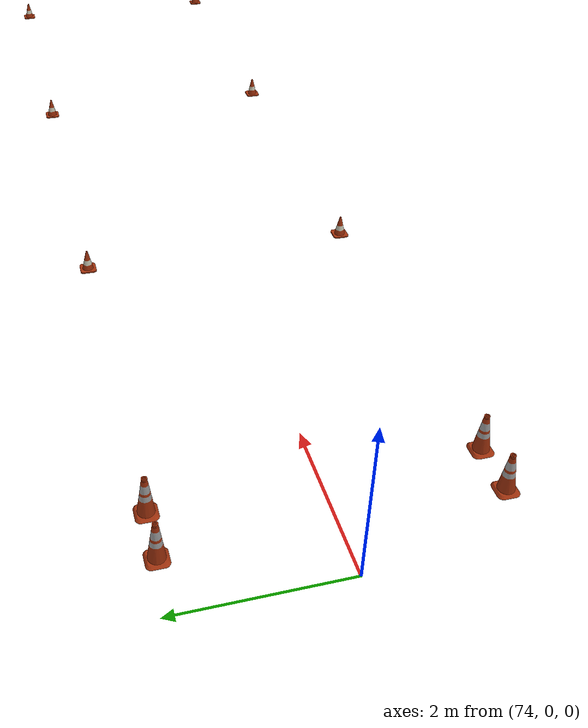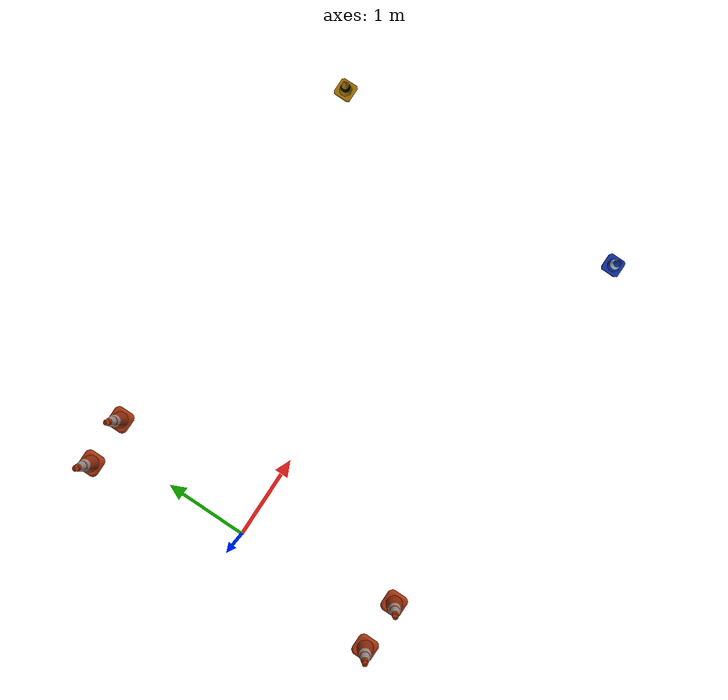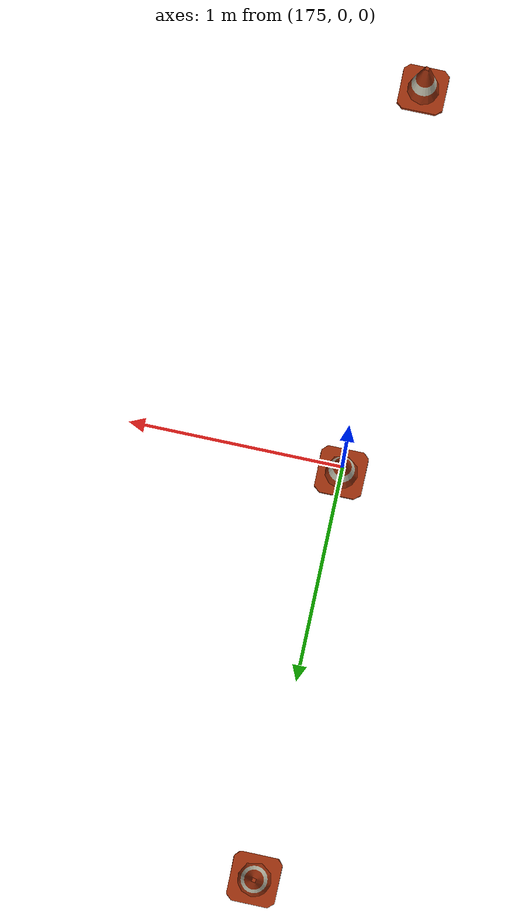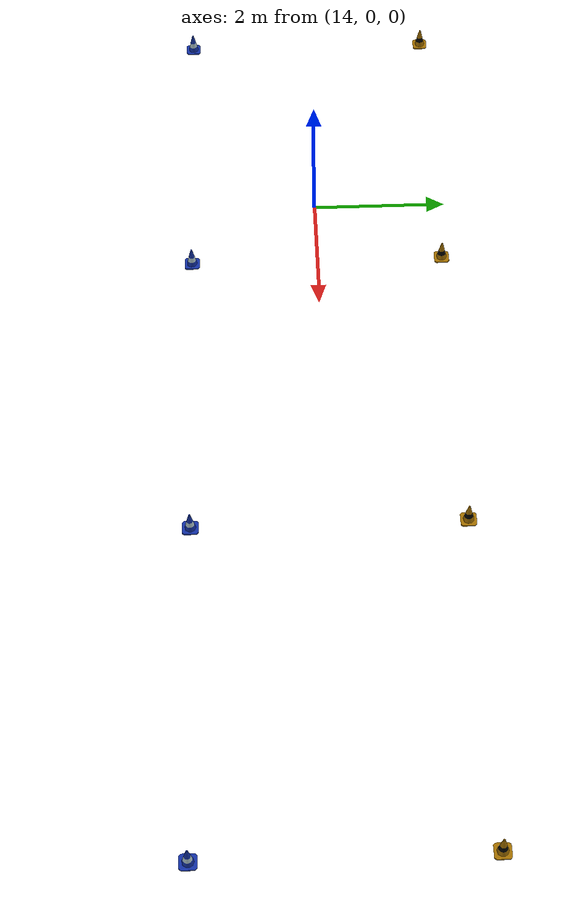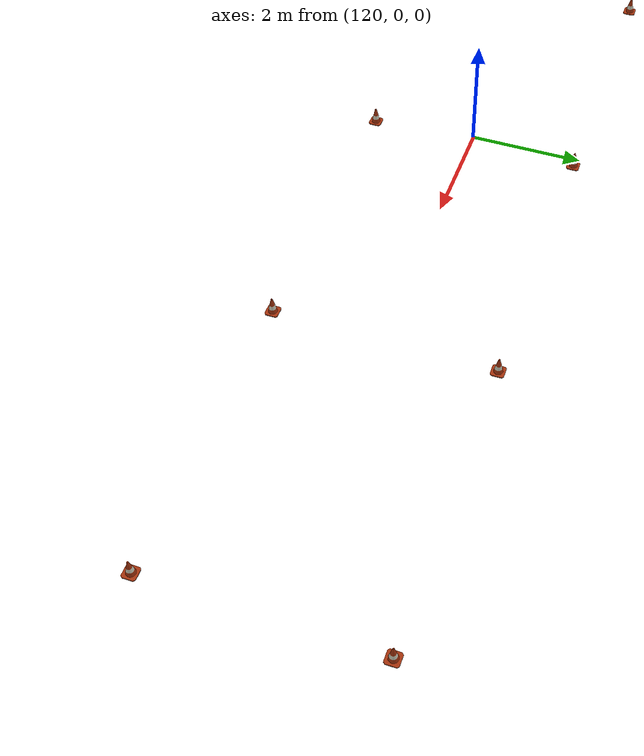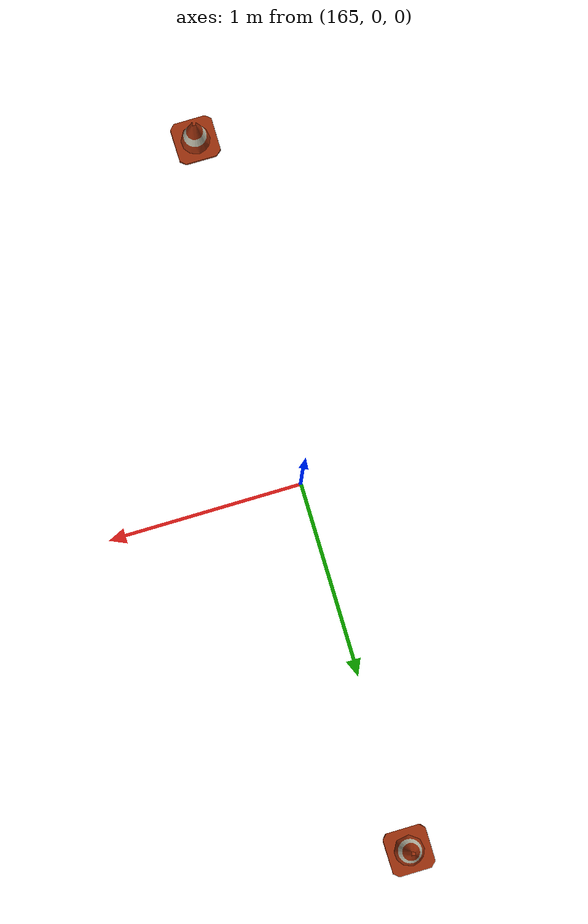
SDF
<?xml version='1.0' encoding='UTF-8'?>
<sdf version="1.4">
  <model name="some track">
    <include>
      <uri>model://simulator_description/models/cone_blue</uri>
      <pose>5.0 -1.9 0 0 0 0</pose>
      <name>cone_right1</name>
    </include>
    <include>
      <uri>model://simulator_description/models/cone_blue</uri>
      <pose>10.0 -1.9 0 0 0 0</pose>
      <name>cone_right2</name>
    </include>
    <include>
      <uri>model://simulator_description/models/cone_blue</uri>
      <pose>15.0 -1.9 0 0 0 0</pose>
      <name>cone_right3</name>
    </include>
    <include>
      <uri>model://simulator_description/models/cone_blue</uri>
      <pose>20.0 -1.9 0 0 0 0</pose>
      <name>cone_right4</name>
    </include>
    <include>
      <uri>model://simulator_description/models/cone_blue</uri>
      <pose>25.0 -1.9 0 0 0 0</pose>
      <name>cone_right5</name>
    </include>
    <include>
      <uri>model://simulator_description/models/cone_blue</uri>
      <pose>30.0 -1.9 0 0 0 0</pose>
      <name>cone_right6</name>
    </include>
    <include>
      <uri>model://simulator_description/models/cone_blue</uri>
      <pose>35.0 -1.9 0 0 0 0</pose>
      <name>cone_right7</name>
    </include>
    <include>
      <uri>model://simulator_description/models/cone_blue</uri>
      <pose>40.0 -1.9 0 0 0 0</pose>
      <name>cone_right8</name>
    </include>
    <include>
      <uri>model://simulator_description/models/cone_blue</uri>
      <pose>45.0 -1.9 0 0 0 0</pose>
      <name>cone_right9</name>
    </include>
    <include>
      <uri>model://simulator_description/models/cone_blue</uri>
      <pose>50.0 -1.9 0 0 0 0</pose>
      <name>cone_right10</name>
    </include>
    <include>
      <uri>model://simulator_description/models/cone_blue</uri>
      <pose>55.0 -1.9 0 0 0 0</pose>
      <name>cone_right11</name>
    </include>
    <include>
      <uri>model://simulator_description/models/cone_blue</uri>
      <pose>60.0 -1.9 0 0 0 0</pose>
      <name>cone_right12</name>
    </include>
    <include>
      <uri>model://simulator_description/models/cone_blue</uri>
      <pose>65.0 -1.9 0 0 0 0</pose>
      <name>cone_right13</name>
    </include>
    <include>
      <uri>model://simulator_description/models/cone_blue</uri>
      <pose>70.0 -1.9 0 0 0 0</pose>
      <name>cone_right14</name>
    </include>
    <include>
      <uri>model://simulator_description/models/cone_yellow</uri>
      <pose>5.0 1.9 0 0 0 0</pose>
      <name>cone_left1</name>
    </include>
    <include>
      <uri>model://simulator_description/models/cone_yellow</uri>
      <pose>10.0 1.9 0 0 0 0</pose>
      <name>cone_left2</name>
    </include>
    <include>
      <uri>model://simulator_description/models/cone_yellow</uri>
      <pose>15.0 1.9 0 0 0 0</pose>
      <name>cone_left3</name>
    </include>
    <include>
      <uri>model://simulator_description/models/cone_yellow</uri>
      <pose>20.0 1.9 0 0 0 0</pose>
      <name>cone_left4</name>
    </include>
    <include>
      <uri>model://simulator_description/models/cone_yellow</uri>
      <pose>25.0 1.9 0 0 0 0</pose>
      <name>cone_left5</name>
    </include>
    <include>
      <uri>model://simulator_description/models/cone_yellow</uri>
      <pose>30.0 1.9 0 0 0 0</pose>
      <name>cone_left6</name>
    </include>
    <include>
      <uri>model://simulator_description/models/cone_yellow</uri>
      <pose>35.0 1.9 0 0 0 0</pose>
      <name>cone_left7</name>
    </include>
    <include>
      <uri>model://simulator_description/models/cone_yellow</uri>
      <pose>40.0 1.9 0 0 0 0</pose>
      <name>cone_left8</name>
    </include>
    <include>
      <uri>model://simulator_description/models/cone_yellow</uri>
      <pose>45.0 1.9 0 0 0 0</pose>
      <name>cone_left9</name>
    </include>
    <include>
      <uri>model://simulator_description/models/cone_yellow</uri>
      <pose>50.0 1.9 0 0 0 0</pose>
      <name>cone_left10</name>
    </include>
    <include>
      <uri>model://simulator_description/models/cone_yellow</uri>
      <pose>55.0 1.9 0 0 0 0</pose>
      <name>cone_left11</name>
    </include>
    <include>
      <uri>model://simulator_description/models/cone_yellow</uri>
      <pose>60.0 1.9 0 0 0 0</pose>
      <name>cone_left12</name>
    </include>
    <include>
      <uri>model://simulator_description/models/cone_yellow</uri>
      <pose>65.0 1.9 0 0 0 0</pose>
      <name>cone_left13</name>
    </include>
    <include>
      <uri>model://simulator_description/models/cone_yellow</uri>
      <pose>70.0 1.9 0 0 0 0</pose>
      <name>cone_left14</name>
    </include>
    <include>
      <uri>model://simulator_description/models/cone_orange</uri>
      <pose>80.0 1.9 0 0 0 0</pose>
      <name>cone_orange1</name>
    </include>
    <include>
      <uri>model://simulator_description/models/cone_orange</uri>
      <pose>80.0 -1.9 0 0 0 0</pose>
      <name>cone_orange2</name>
    </include>
    <include>
      <uri>model://simulator_description/models/cone_orange</uri>
      <pose>85.0 1.9 0 0 0 0</pose>
      <name>cone_orange3</name>
    </include>
    <include>
      <uri>model://simulator_description/models/cone_orange</uri>
      <pose>85.0 -1.9 0 0 0 0</pose>
      <name>cone_orange4</name>
    </include>
    <include>
      <uri>model://simulator_description/models/cone_orange</uri>
      <pose>90.0 1.9 0 0 0 0</pose>
      <name>cone_orange5</name>
    </include>
    <include>
      <uri>model://simulator_description/models/cone_orange</uri>
      <pose>90.0 -1.9 0 0 0 0</pose>
      <name>cone_orange6</name>
    </include>
    <include>
      <uri>model://simulator_description/models/cone_orange</uri>
      <pose>95.0 1.9 0 0 0 0</pose>
      <name>cone_orange7</name>
    </include>
    <include>
      <uri>model://simulator_description/models/cone_orange</uri>
      <pose>95.0 -1.9 0 0 0 0</pose>
      <name>cone_orange8</name>
    </include>
    <include>
      <uri>model://simulator_description/models/cone_orange</uri>
      <pose>100.0 1.9 0 0 0 0</pose>
      <name>cone_orange9</name>
    </include>
    <include>
      <uri>model://simulator_description/models/cone_orange</uri>
      <pose>100.0 -1.9 0 0 0 0</pose>
      <name>cone_orange10</name>
    </include>
    <include>
      <uri>model://simulator_description/models/cone_orange</uri>
      <pose>105.0 1.9 0 0 0 0</pose>
      <name>cone_orange11</name>
    </include>
    <include>
      <uri>model://simulator_description/models/cone_orange</uri>
      <pose>105.0 -1.9 0 0 0 0</pose>
      <name>cone_orange12</name>
    </include>
    <include>
      <uri>model://simulator_description/models/cone_orange</uri>
      <pose>110.0 1.9 0 0 0 0</pose>
      <name>cone_orange13</name>
    </include>
    <include>
      <uri>model://simulator_description/models/cone_orange</uri>
      <pose>110.0 -1.9 0 0 0 0</pose>
      <name>cone_orange14</name>
    </include>
    <include>
      <uri>model://simulator_description/models/cone_orange</uri>
      <pose>115.0 1.9 0 0 0 0</pose>
      <name>cone_orange15</name>
    </include>
    <include>
      <uri>model://simulator_description/models/cone_orange</uri>
      <pose>115.0 -1.9 0 0 0 0</pose>
      <name>cone_orange16</name>
    </include>
    <include>
      <uri>model://simulator_description/models/cone_orange</uri>
      <pose>120.0 1.9 0 0 0 0</pose>
      <name>cone_orange17</name>
    </include>
    <include>
      <uri>model://simulator_description/models/cone_orange</uri>
      <pose>120.0 -1.9 0 0 0 0</pose>
      <name>cone_orange18</name>
    </include>
    <include>
      <uri>model://simulator_description/models/cone_orange</uri>
      <pose>125.0 1.9 0 0 0 0</pose>
      <name>cone_orange19</name>
    </include>
    <include>
      <uri>model://simulator_description/models/cone_orange</uri>
      <pose>125.0 -1.9 0 0 0 0</pose>
      <name>cone_orange20</name>
    </include>
    <include>
      <uri>model://simulator_description/models/cone_orange</uri>
      <pose>130.0 1.9 0 0 0 0</pose>
      <name>cone_orange21</name>
    </include>
    <include>
      <uri>model://simulator_description/models/cone_orange</uri>
      <pose>130.0 -1.9 0 0 0 0</pose>
      <name>cone_orange22</name>
    </include>
    <include>
      <uri>model://simulator_description/models/cone_orange</uri>
      <pose>135.0 1.9 0 0 0 0</pose>
      <name>cone_orange23</name>
    </include>
    <include>
      <uri>model://simulator_description/models/cone_orange</uri>
      <pose>135.0 -1.9 0 0 0 0</pose>
      <name>cone_orange24</name>
    </include>
    <include>
      <uri>model://simulator_description/models/cone_orange</uri>
      <pose>140.0 1.9 0 0 0 0</pose>
      <name>cone_orange25</name>
    </include>
    <include>
      <uri>model://simulator_description/models/cone_orange</uri>
      <pose>140.0 -1.9 0 0 0 0</pose>
      <name>cone_orange26</name>
    </include>
    <include>
      <uri>model://simulator_description/models/cone_orange</uri>
      <pose>145.0 1.9 0 0 0 0</pose>
      <name>cone_orange27</name>
    </include>
    <include>
      <uri>model://simulator_description/models/cone_orange</uri>
      <pose>145.0 -1.9 0 0 0 0</pose>
      <name>cone_orange28</name>
    </include>
    <include>
      <uri>model://simulator_description/models/cone_orange</uri>
      <pose>150.0 1.9 0 0 0 0</pose>
      <name>cone_orange29</name>
    </include>
    <include>
      <uri>model://simulator_description/models/cone_orange</uri>
      <pose>150.0 -1.9 0 0 0 0</pose>
      <name>cone_orange30</name>
    </include>
    <include>
      <uri>model://simulator_description/models/cone_orange</uri>
      <pose>155.0 1.9 0 0 0 0</pose>
      <name>cone_orange31</name>
    </include>
    <include>
      <uri>model://simulator_description/models/cone_orange</uri>
      <pose>155.0 -1.9 0 0 0 0</pose>
      <name>cone_orange32</name>
    </include>
    <include>
      <uri>model://simulator_description/models/cone_orange</uri>
      <pose>160.0 1.9 0 0 0 0</pose>
      <name>cone_orange33</name>
    </include>
    <include>
      <uri>model://simulator_description/models/cone_orange</uri>
      <pose>160.0 -1.9 0 0 0 0</pose>
      <name>cone_orange34</name>
    </include>
    <include>
      <uri>model://simulator_description/models/cone_orange</uri>
      <pose>165.0 1.9 0 0 0 0</pose>
      <name>cone_orange35</name>
    </include>
    <include>
      <uri>model://simulator_description/models/cone_orange</uri>
      <pose>165.0 -1.9 0 0 0 0</pose>
      <name>cone_orange36</name>
    </include>
    <include>
      <uri>model://simulator_description/models/cone_orange</uri>
      <pose>170.0 1.9 0 0 0 0</pose>
      <name>cone_orange37</name>
    </include>
    <include>
      <uri>model://simulator_description/models/cone_orange</uri>
      <pose>170.0 -1.9 0 0 0 0</pose>
      <name>cone_orange38</name>
    </include>
    <include>
      <uri>model://simulator_description/models/cone_orange</uri>
      <pose>175.0 1.9 0 0 0 0</pose>
      <name>cone_orange39</name>
    </include>
    <include>
      <uri>model://simulator_description/models/cone_orange</uri>
      <pose>175.0 -1.9 0 0 0 0</pose>
      <name>cone_orange40</name>
    </include>
    <include>
      <uri>model://simulator_description/models/cone_orange</uri>
      <pose>175.0 0.0 0 0 0 0</pose>
      <name>cone_orange41</name>
    </include>
    <include>
      <uri>model://simulator_description/models/cone_orange</uri>
      <pose>175.0 1.9 0 0 0 0</pose>
      <name>cone_orange42</name>
    </include>
    <include>
      <uri>model://simulator_description/models/cone_orange_big</uri>
      <pose>-0.3 1.9 0 0 0 0</pose>
      <name>cone_orange_big1</name>
    </include>
    <include>
      <uri>model://simulator_description/models/cone_orange_big</uri>
      <pose>-0.3 -1.9 0 0 0 0</pose>
      <name>cone_orange_big2</name>
    </include>
    <include>
      <uri>model://simulator_description/models/cone_orange_big</uri>
      <pose>0.3 1.9 0 0 0 0</pose>
      <name>cone_orange_big3</name>
    </include>
    <include>
      <uri>model://simulator_description/models/cone_orange_big</uri>
      <pose>0.3 -1.9 0 0 0 0</pose>
      <name>cone_orange_big4</name>
    </include>
    <include>
      <uri>model://simulator_description/models/cone_orange_big</uri>
      <pose>74.7 1.9 0 0 0 0</pose>
      <name>cone_orange_big5</name>
    </include>
    <include>
      <uri>model://simulator_description/models/cone_orange_big</uri>
      <pose>74.7 -1.9 0 0 0 0</pose>
      <name>cone_orange_big6</name>
    </include>
    <include>
      <uri>model://simulator_description/models/cone_orange_big</uri>
      <pose>75.3 1.9 0 0 0 0</pose>
      <name>cone_orange_big7</name>
    </include>
    <include>
      <uri>model://simulator_description/models/cone_orange_big</uri>
      <pose>75.3 -1.9 0 0 0 0</pose>
      <name>cone_orange_big8</name>
    </include>
  </model>
</sdf>

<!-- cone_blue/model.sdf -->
<sdf version='1.4'>
  <model name="cone_blue">
    <link name="link">
      <collision name="collision">
        <geometry>
            <box>
              <size> 0.228 0.228 0.325 </size>
            </box>
        </geometry>
      </collision>
      <visual name="visual">
        <geometry>
          <mesh>
            <uri>model://simulator_description/meshes/cone/cone_blue.dae</uri>
            <scale>1 1 1</scale>
          </mesh>
        </geometry>
      </visual>
    </link>
  </model>
</sdf>

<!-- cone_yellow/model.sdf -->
<sdf version='1.4'>
  <model name="cone_yellow">
    <link name="link">
      <collision name="collision">
        <geometry>
            <box>
              <size> 0.228 0.228 0.325 </size>
            </box>
        </geometry>
      </collision>
      <visual name="visual">
        <geometry>
          <mesh>
            <uri>model://simulator_description/meshes/cone/cone_yellow.dae</uri>
            <scale>1 1 1</scale>
          </mesh>
        </geometry>
      </visual>
    </link>
  </model>
</sdf>

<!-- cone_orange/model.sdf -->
<sdf version='1.4'>
  <model name="cone_orange">
    <link name="link">
      <collision name="collision">
        <geometry>
            <box>
              <size> 0.228 0.228 0.325 </size>
            </box>
        </geometry>
      </collision>
      <visual name="visual">
        <geometry>
          <mesh>
            <uri>model://simulator_description/meshes/cone/cone_orange.dae</uri>
            <scale>1 1 1</scale>
          </mesh>
        </geometry>
      </visual>
    </link>
  </model>
</sdf>

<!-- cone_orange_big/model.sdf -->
<sdf version='1.4'>
  <model name="cone_orange_big">
    <link name="link">
      <collision name="collision">
        <geometry>
            <box>
              <size> 0.285 0.285 0.505 </size>
            </box>
        </geometry>
      </collision>
      <visual name="visual">
        <geometry>
          <mesh>
            <uri>model://simulator_description/meshes/cone/cone_orange_big.dae</uri>
            <scale>1 1 1</scale>
          </mesh>
        </geometry>
      </visual>
    </link>
  </model>
</sdf>
